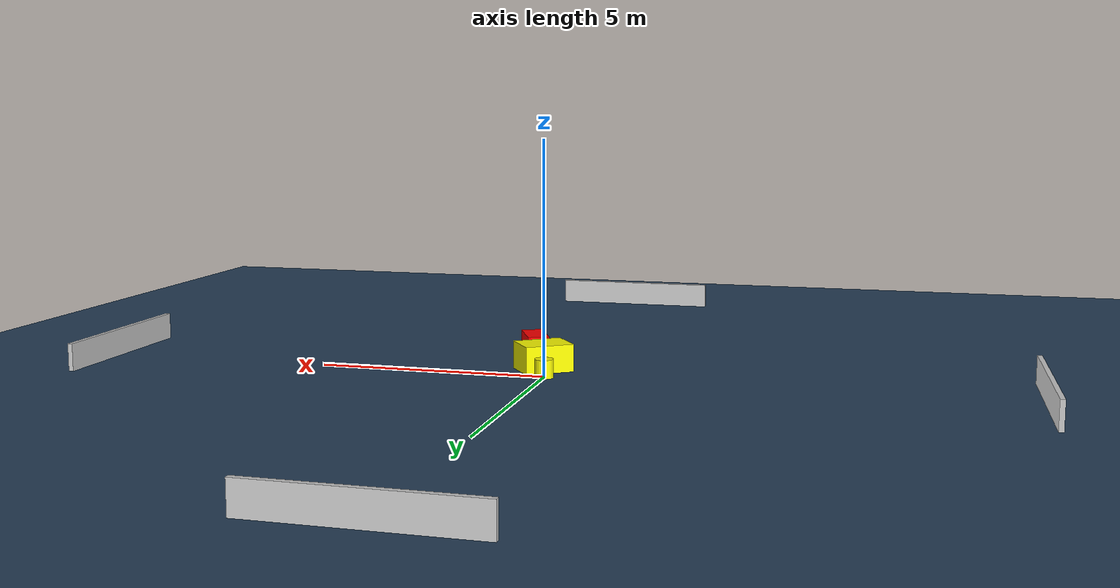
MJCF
<?xml version="1.0" ?>
<mujoco model="generated_environment">
  <option timestep="0.01" integrator="RK4" cone="elliptic"/>
  <default>
    <geom density="1"/>
  </default>
  <asset>
    <texture builtin="gradient" height="3072" name="skybox" rgb1="0.3 0.5 0.7" rgb2="0 0 0" type="skybox" width="512"/>
    <texture builtin="checker" height="300" name="groundplane" rgb1="0.2 0.3 0.4" rgb2="0.1 0.2 0.3" type="2d" width="300"/>
    <material name="groundplane" reflectance="0.2" texrepeat="5 5" texture="groundplane"/>
  </asset>
  <worldbody>
    <light dir="0 0 -1" directional="true" pos="0 0 1.5"/>
    <geom condim="3" friction="0.5 0.005 0.001" material="groundplane" name="floor" pos="0 0 0" size="0 0 0.05" type="plane"/>
    <body name="walls">
      <geom name="wall_1" condim="4" pos="-10.0 0.0 0.3" rgba="0.800000011920929 0.800000011920929 0.800000011920929 1.0" size="0.05 2.0 0.3" type="box"/>
      <geom name="wall_2" condim="4" pos="10.0 0.0 0.3" rgba="0.800000011920929 0.800000011920929 0.800000011920929 1.0" size="0.05 2.0 0.3" type="box"/>
      <geom name="wall_3" condim="4" pos="0.0 -10.0 0.3" rgba="0.800000011920929 0.800000011920929 0.800000011920929 1.0" size="2.0 0.05 0.3" type="box"/>
      <geom name="wall_4" condim="4" pos="0.0 10.0 0.3" rgba="0.800000011920929 0.800000011920929 0.800000011920929 1.0" size="2.0 0.05 0.3" type="box"/>
    </body>
    <body name="robot">
      <joint name="joint_x" type="slide" pos="0 0 0" axis="1 0 0"/>
      <joint name="joint_y" type="slide" pos="0 0 0" axis="0 1 0"/>
      <geom name="robot" type="cylinder" pos="0.0 0.0 0.2" size="0.2 0.2 0.0" mass="5.0" friction="1.0 0.005 0.0001" condim="4" rgba="1.0 1.0 0.0 1.0"/>
    </body>
    <body name="obstacle_1_movable">
      <geom name="obstacle_1_movable" condim="4" pos="0.20939546915242066 -0.7385703260482193 0.3" euler="0 0 215.56108655684184" friction="0.0 0.005 0.001" rgba="1.0 1.0 0.0 1.0" size="0.5396311585801994 0.4069445106843847 0.3" type="box" mass="0.1"/>
      <joint type="free"/>
    </body>
    <body name="obstacle_2_static">
      <geom name="obstacle_2_static" condim="4" pos="0.6645736910954582 -1.7393098208506563 0.3" euler="0 0 294.61695198720486" friction="0.0 0.005 0.001" rgba="1.0 0.0 0.0 1.0" size="0.48116055691252785 0.2361773416077204 0.3" type="box"/>
    </body>
  </worldbody>
  <actuator>
    <motor name="actuator_x" joint="joint_x" gear="1" ctrlrange="-1 1"/>
    <motor name="actuator_y" joint="joint_y" gear="1" ctrlrange="-1 1"/>
  </actuator>
</mujoco>
